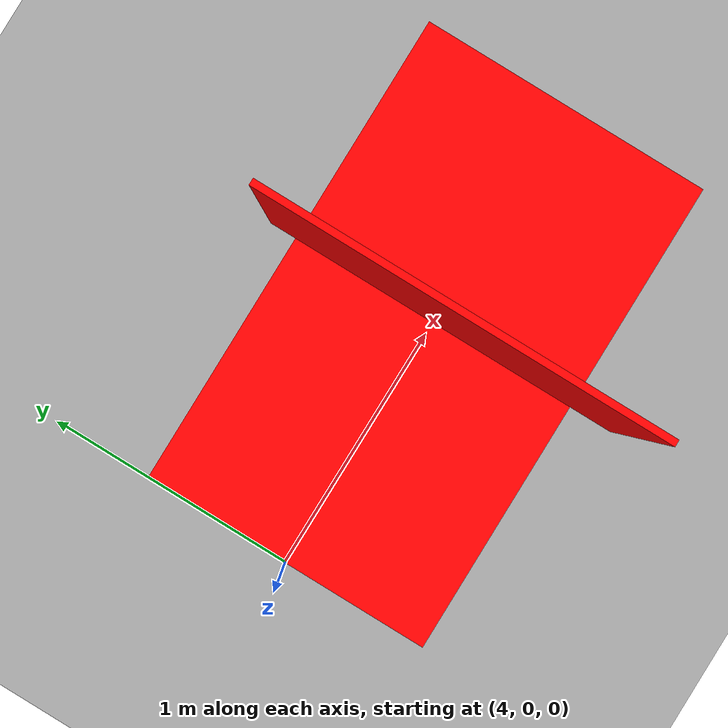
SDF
<?xml version="1.0" encoding="UTF-8"?>
<sdf version="1.9">
  <world name="red_target">
    <physics type="ode">
      <max_step_size>0.004</max_step_size>
      <real_time_factor>1.0</real_time_factor>
      <real_time_update_rate>250</real_time_update_rate>
    </physics>
    <gravity>0 0 -9.8</gravity>
    <magnetic_field>6e-06 2.3e-05 -4.2e-05</magnetic_field>
    <atmosphere type="adiabatic"/>
    <scene>
      <grid>false</grid>
      <ambient>0.5 0.5 0.5 1</ambient>
      <background>0.7 0.7 0.7 1</background>
      <shadows>true</shadows>
    </scene>
    <model name="ground_plane">
      <static>true</static>
      <link name="link">
        <collision name="collision">
          <geometry><plane><normal>0 0 1</normal><size>500 500</size></plane></geometry>
        </collision>
        <visual name="visual">
          <geometry><plane><normal>0 0 1</normal><size>500 500</size></plane></geometry>
          <material>
            <ambient>0.65 0.65 0.65 1</ambient>
            <diffuse>0.65 0.65 0.65 1</diffuse>
            <specular>0 0 0 1</specular>
          </material>
        </visual>
      </link>
    </model>
    <!-- One target presents the same red landmark to both cameras: the
         vertical panel is used during approach and the pad from above. -->
    <model name="red_target">
      <static>true</static>
      <pose>5 0 0 0 0 0</pose>
      <link name="target_link">
        <collision name="ground_pad_collision">
          <pose>0 0 0.01 0 0 0</pose>
          <geometry><box><size>2.0 1.2 0.02</size></box></geometry>
        </collision>
        <visual name="ground_pad">
          <pose>0 0 0.01 0 0 0</pose>
          <geometry><box><size>2.0 1.2 0.02</size></box></geometry>
          <material>
            <ambient>1 0 0 1</ambient><diffuse>1 0 0 1</diffuse>
            <specular>0 0 0 1</specular><emissive>0.15 0 0 1</emissive>
          </material>
        </visual>
        <!-- The approach marker is visual-only. A physical wall here would
             intersect the flight path exactly when the downward camera
             begins aligning over the ground pad. -->
        <visual name="front_panel">
          <pose>0 0 2.0 0 0 0</pose>
          <geometry><box><size>0.02 1.2 1.2</size></box></geometry>
          <material>
            <ambient>1 0 0 1</ambient><diffuse>1 0 0 1</diffuse>
            <specular>0 0 0 1</specular><emissive>0.15 0 0 1</emissive>
          </material>
        </visual>
      </link>
    </model>
    <light name="sun" type="directional">      <pose>0 0 500 0 0 0</pose>
      <cast_shadows>true</cast_shadows><intensity>1</intensity>
      <direction>0.001 0.625 -0.78</direction>
      <diffuse>0.9 0.9 0.9 1</diffuse><specular>0.2 0.2 0.2 1</specular>
    </light>
    <spherical_coordinates>
      <surface_model>EARTH_WGS84</surface_model>
      <world_frame_orientation>ENU</world_frame_orientation>
      <latitude_deg>47.397971057728974</latitude_deg>
      <longitude_deg>8.546163739800146</longitude_deg><elevation>0</elevation>
    </spherical_coordinates>
  </world>
</sdf>
